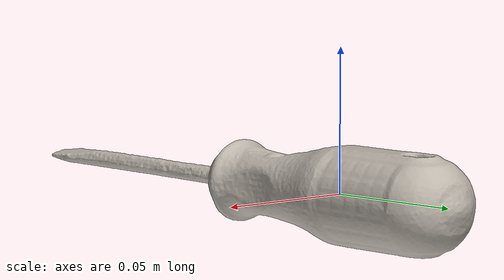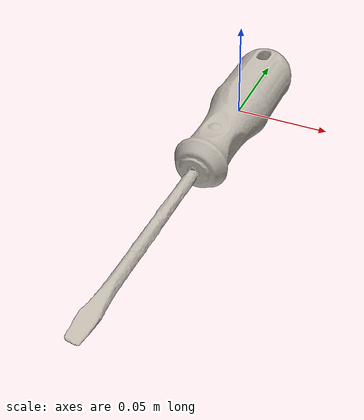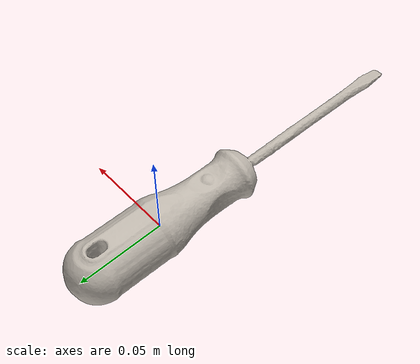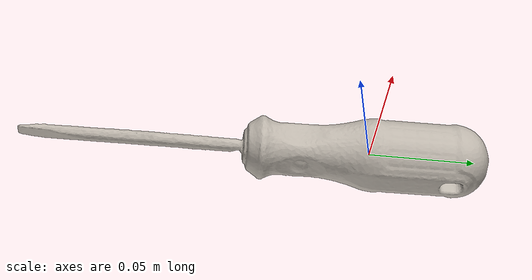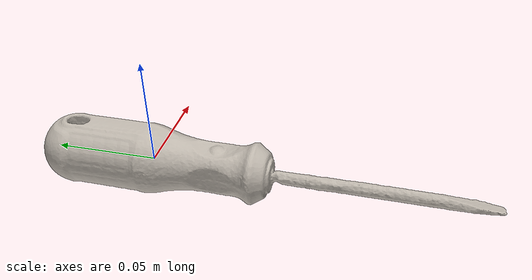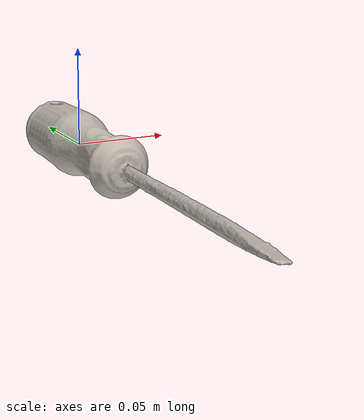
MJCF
<mujoco model="flat_screwdriver">
  <compiler angle="radian" />

  <asset>
    <mesh name="flat_screwdriver_visual_mesh" file="flat_screwdriver/textured.obj" />
    <mesh name="flat_screwdriver_collision_mesh_0" file="flat_screwdriver/textured_coacd_0.stl" />
    <mesh name="flat_screwdriver_collision_mesh_1" file="flat_screwdriver/textured_coacd_1.stl" />
    <texture name="flat_screwdriver_texture" type="2d" file="flat_screwdriver/texture_map.png" />
    <material name="flat_screwdriver_material" texture="flat_screwdriver_texture" />
  </asset>

  <worldbody>
    <body name="flat_screwdriver" pos="0 0 0" euler="0 0 0">
      <freejoint name="flat_screwdriver_joint" />
      <geom name="flat_screwdriver_visual_geom" type="mesh" mesh="flat_screwdriver_visual_mesh" material="flat_screwdriver_material" pos="0.0 0.0 0.0" euler="0 0 0" contype="0" conaffinity="0" group="0" />
      <geom name="flat_screwdriver_collision_geom_0" type="mesh" mesh="flat_screwdriver_collision_mesh_0" pos="0.0 0.0 0.0" euler="0 0 0" contype="1" conaffinity="1" group="3" />
      <geom name="flat_screwdriver_collision_geom_1" type="mesh" mesh="flat_screwdriver_collision_mesh_1" pos="0.0 0.0 0.0" euler="0 0 0" contype="1" conaffinity="1" group="3" />
      <inertial pos="0 0 0" euler="0 0 0" mass="0.0984" diaginertia="0.001 0.001 0.001" />
    </body>
  </worldbody>
</mujoco>
